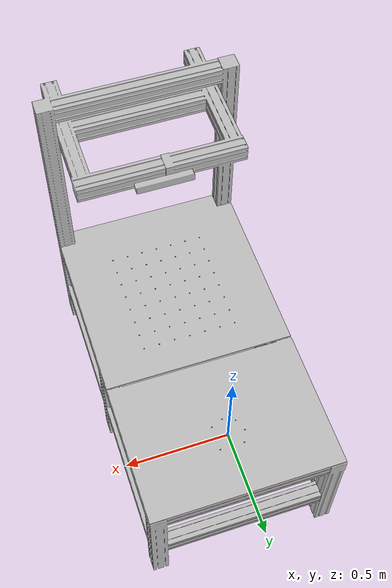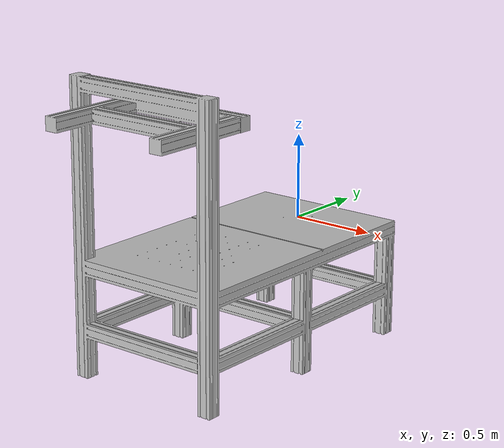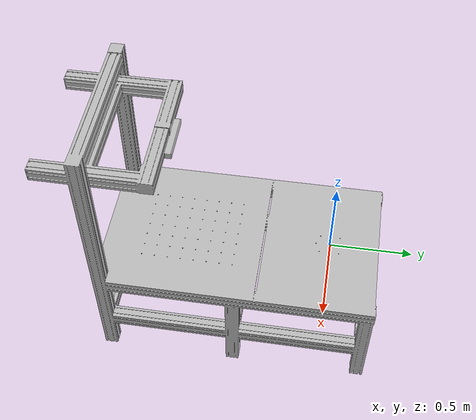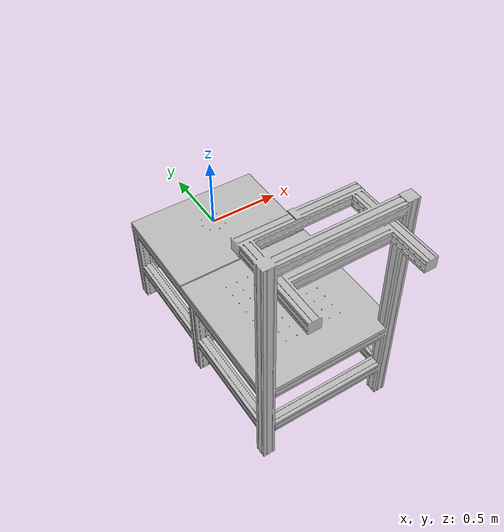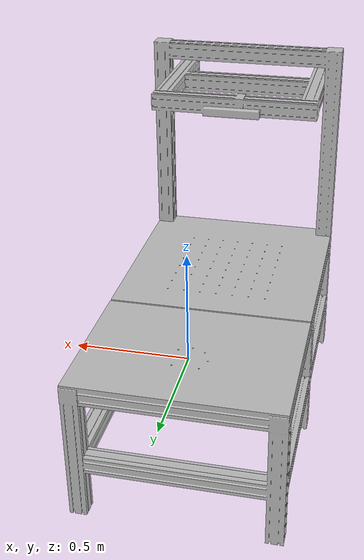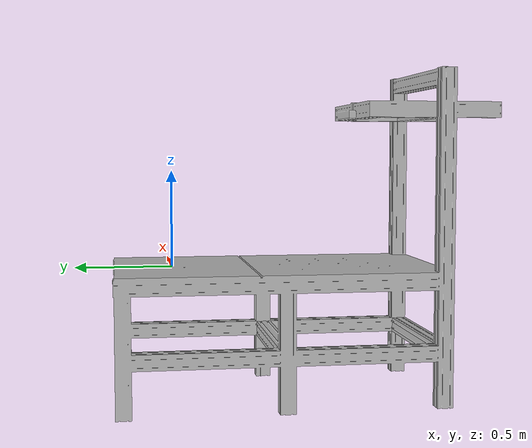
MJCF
<mujoco model="platform">
    <compiler angle="radian" meshdir="/home/raylyao/ur10/meshes/" />
    <size njmax="500" nconmax="100" />
    <asset>
        <mesh name="platform" file="platform.stl" />
    </asset>
    <worldbody>
        <geom type="mesh" contype="0" conaffinity="0" group="1" rgba="0.75294 0.75294 0.75294 1" mesh="platform" />
        <geom type="mesh" rgba="0.75294 0.75294 0.75294 1" mesh="platform" />
    </worldbody>
</mujoco>
